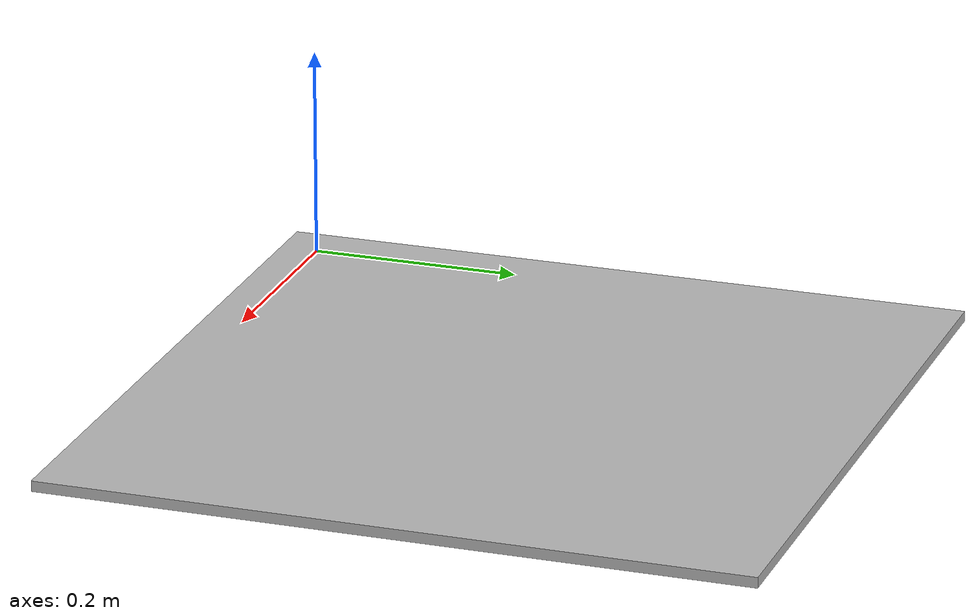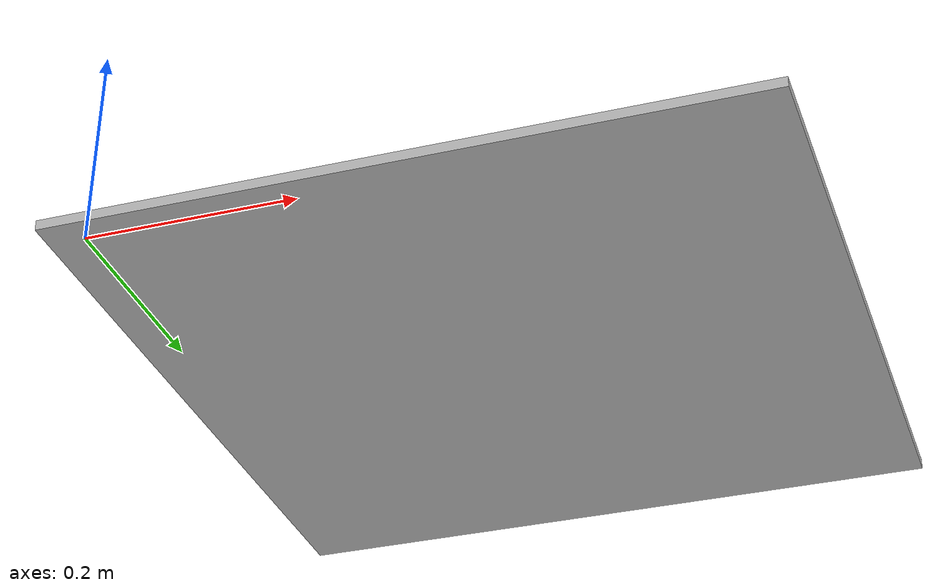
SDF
<?xml version='1.0'?>
<sdf version='1.6'>
  <model name='Apriltag11'>
    <link name='main'>
    <pose frame=''>0.3 0.3 0 0 0 1.570796327</pose>
      <visual name='main_Visual'>
        <geometry>
          <box>
          <size>0.664 0.664 0.01</size>
          </box>
        </geometry>
           <material>
          <script>
            <uri>model://Apriltag11/materials/scripts</uri>
            <uri>model://Apriltag11/materials/textures</uri>
            <name>Apriltag11</name>
          </script>
        </material>
      </visual>
      <collision name="surface">
        <pose>0 0 0 0 0 0</pose>
        <geometry>
          <box>
          <size>0.664 0.664 0.01</size>
          </box>
        </geometry>
      </collision>
     </link>
    <static>1</static>
  </model>
</sdf>
